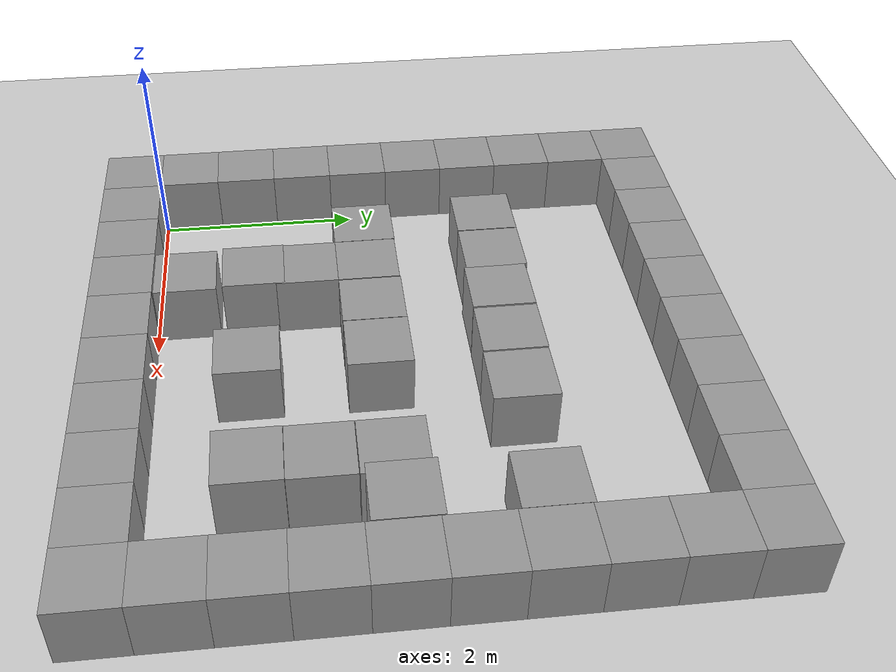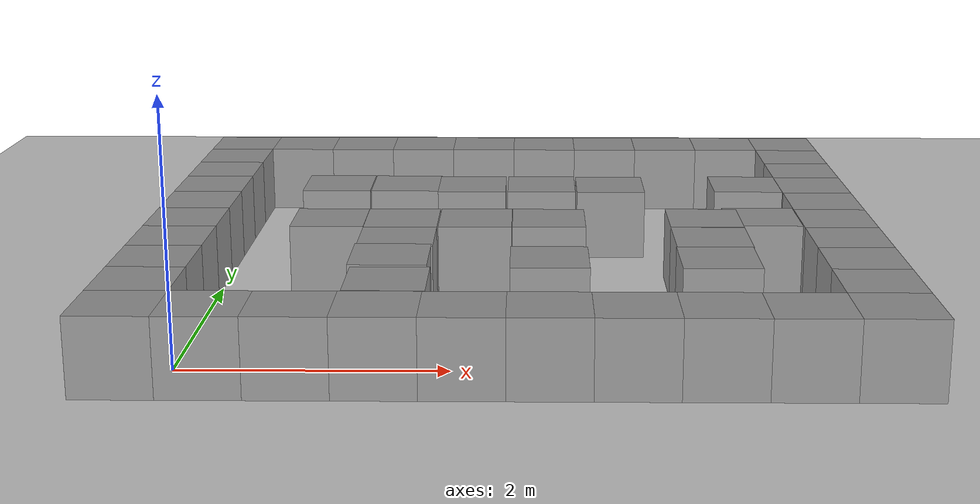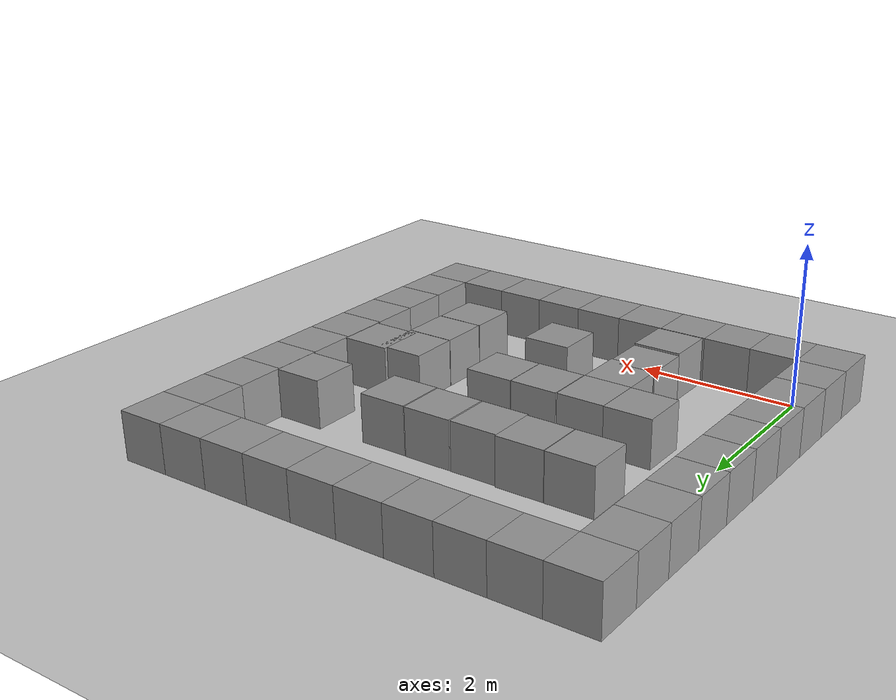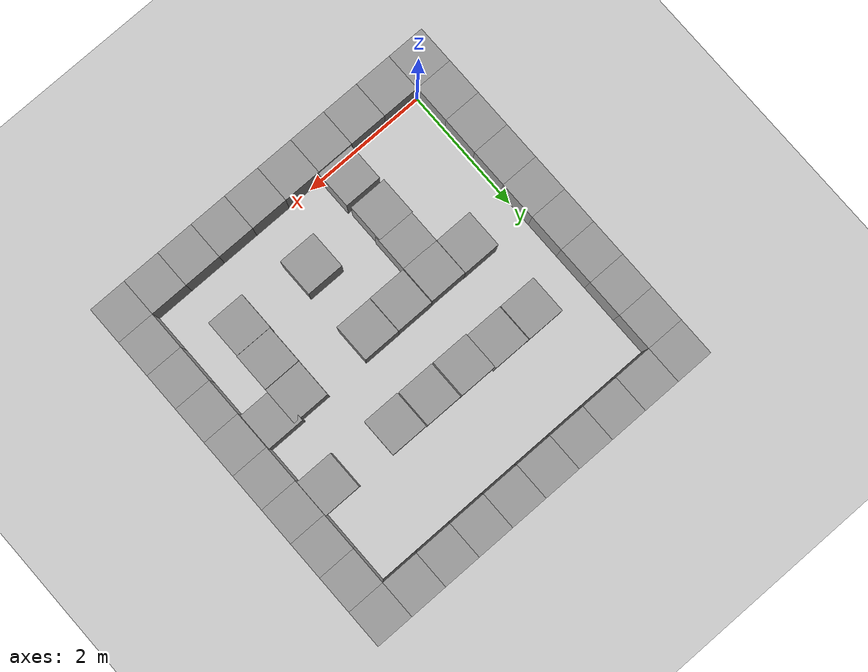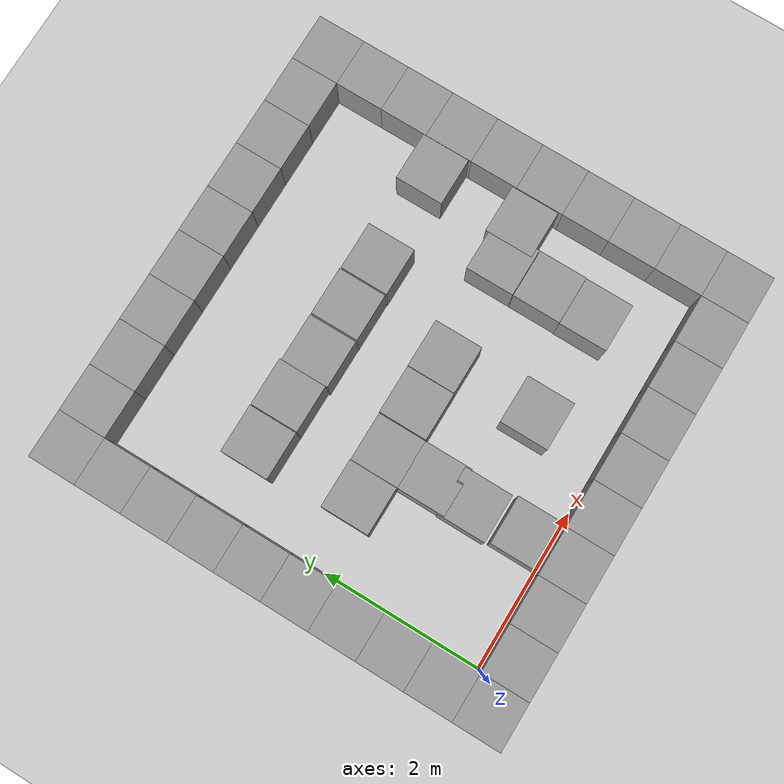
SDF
<sdf version="1.7">
 <world name="default">
  <scene><ambient>0.4 0.4 0.4 1</ambient><shadows>0</shadows><background>0.7 0.7 0.7 1</background></scene>
  <model name="ground_plane">
   <static>1</static>
   <link name="link">
    <collision name="collision">
     <geometry><plane><normal>0 0 1</normal><size>100 100</size></plane></geometry>
     <surface><friction><ode><mu>100</mu><mu2>50</mu2></ode></friction></surface>
    </collision>
    <visual name="visual">
     <cast_shadows>0</cast_shadows>
     <geometry><plane><normal>0 0 1</normal><size>100 100</size></plane></geometry>
     <material>
      <script><uri>file://media/materials/scripts/gazebo.material</uri><name>Gazebo/Grey</name></script>
     </material>
    </visual>
   </link>
  </model>
  <light name="sun" type="directional">
   <pose>0 0 10 0 -0 0</pose>
   <diffuse>0.8 0.8 0.8 1</diffuse>
   <specular>0.2 0.2 0.2 1</specular>
   <attenuation>
    <range>1000</range>
    <constant>0.9</constant>
    <linear>0.01</linear>
    <quadratic>0.001</quadratic>
   </attenuation>
   <direction>-0.5 0.1 -0.9</direction>
   <spot><inner_angle>0</inner_angle><outer_angle>0</outer_angle><falloff>0</falloff></spot>
  </light>
  <model name="unit_box_id_-0.6_-0.6">
   <static>1</static>
   <pose>-0.3 -0.3 0.3 0 -0 0</pose>
   <link name="link">
    <inertial>
     <mass>1</mass>
     <inertia>
      <ixx>0.166667</ixx>
      <ixy>0</ixy>
      <ixz>0</ixz>
      <iyy>0.166667</iyy>
      <iyz>0</iyz>
      <izz>0.166667</izz>
     </inertia>
     <pose>-0.3 -0.3 0.3 0 -0 0</pose>
    </inertial>
    <collision name="collision"><geometry><box><size>0.6 0.6 0.6</size></box></geometry></collision>
    <visual name="visual">
     <geometry><box><size>0.6 0.6 0.6</size></box></geometry>
     <material>
      <script><name>Gazebo/Grey</name><uri>file://media/materials/scripts/gazebo.material</uri></script>
     </material>
    </visual>
   </link>
  </model>
  <model name="unit_box_id_4.8_-0.6">
   <static>1</static>
   <pose>5.1 -0.3 0.3 0 -0 0</pose>
   <link name="link">
    <inertial>
     <mass>1</mass>
     <inertia>
      <ixx>0.166667</ixx>
      <ixy>0</ixy>
      <ixz>0</ixz>
      <iyy>0.166667</iyy>
      <iyz>0</iyz>
      <izz>0.166667</izz>
     </inertia>
     <pose>5.1 -0.3 0.3 0 -0 0</pose>
    </inertial>
    <collision name="collision"><geometry><box><size>0.6 0.6 0.6</size></box></geometry></collision>
    <visual name="visual">
     <geometry><box><size>0.6 0.6 0.6</size></box></geometry>
     <material>
      <script><name>Gazebo/Grey</name><uri>file://media/materials/scripts/gazebo.material</uri></script>
     </material>
    </visual>
   </link>
  </model>
  <model name="unit_box_id_-0.6_0.0">
   <static>1</static>
   <pose>-0.3 0.3 0.3 0 -0 0</pose>
   <link name="link">
    <inertial>
     <mass>1</mass>
     <inertia>
      <ixx>0.166667</ixx>
      <ixy>0</ixy>
      <ixz>0</ixz>
      <iyy>0.166667</iyy>
      <iyz>0</iyz>
      <izz>0.166667</izz>
     </inertia>
     <pose>-0.3 0.3 0.3 0 -0 0</pose>
    </inertial>
    <collision name="collision"><geometry><box><size>0.6 0.6 0.6</size></box></geometry></collision>
    <visual name="visual">
     <geometry><box><size>0.6 0.6 0.6</size></box></geometry>
     <material>
      <script><name>Gazebo/Grey</name><uri>file://media/materials/scripts/gazebo.material</uri></script>
     </material>
    </visual>
   </link>
  </model>
  <model name="unit_box_id_4.8_0.0">
   <static>1</static>
   <pose>5.1 0.3 0.3 0 -0 0</pose>
   <link name="link">
    <inertial>
     <mass>1</mass>
     <inertia>
      <ixx>0.166667</ixx>
      <ixy>0</ixy>
      <ixz>0</ixz>
      <iyy>0.166667</iyy>
      <iyz>0</iyz>
      <izz>0.166667</izz>
     </inertia>
     <pose>5.1 0.3 0.3 0 -0 0</pose>
    </inertial>
    <collision name="collision"><geometry><box><size>0.6 0.6 0.6</size></box></geometry></collision>
    <visual name="visual">
     <geometry><box><size>0.6 0.6 0.6</size></box></geometry>
     <material>
      <script><name>Gazebo/Grey</name><uri>file://media/materials/scripts/gazebo.material</uri></script>
     </material>
    </visual>
   </link>
  </model>
  <model name="unit_box_id_-0.6_0.6">
   <static>1</static>
   <pose>-0.3 0.9 0.3 0 -0 0</pose>
   <link name="link">
    <inertial>
     <mass>1</mass>
     <inertia>
      <ixx>0.166667</ixx>
      <ixy>0</ixy>
      <ixz>0</ixz>
      <iyy>0.166667</iyy>
      <iyz>0</iyz>
      <izz>0.166667</izz>
     </inertia>
     <pose>-0.3 0.9 0.3 0 -0 0</pose>
    </inertial>
    <collision name="collision"><geometry><box><size>0.6 0.6 0.6</size></box></geometry></collision>
    <visual name="visual">
     <geometry><box><size>0.6 0.6 0.6</size></box></geometry>
     <material>
      <script><name>Gazebo/Grey</name><uri>file://media/materials/scripts/gazebo.material</uri></script>
     </material>
    </visual>
   </link>
  </model>
  <model name="unit_box_id_4.8_0.6">
   <static>1</static>
   <pose>5.1 0.9 0.3 0 -0 0</pose>
   <link name="link">
    <inertial>
     <mass>1</mass>
     <inertia>
      <ixx>0.166667</ixx>
      <ixy>0</ixy>
      <ixz>0</ixz>
      <iyy>0.166667</iyy>
      <iyz>0</iyz>
      <izz>0.166667</izz>
     </inertia>
     <pose>5.1 0.9 0.3 0 -0 0</pose>
    </inertial>
    <collision name="collision"><geometry><box><size>0.6 0.6 0.6</size></box></geometry></collision>
    <visual name="visual">
     <geometry><box><size>0.6 0.6 0.6</size></box></geometry>
     <material>
      <script><name>Gazebo/Grey</name><uri>file://media/materials/scripts/gazebo.material</uri></script>
     </material>
    </visual>
   </link>
  </model>
  <model name="unit_box_id_-0.6_1.2">
   <static>1</static>
   <pose>-0.3 1.5 0.3 0 -0 0</pose>
   <link name="link">
    <inertial>
     <mass>1</mass>
     <inertia>
      <ixx>0.166667</ixx>
      <ixy>0</ixy>
      <ixz>0</ixz>
      <iyy>0.166667</iyy>
      <iyz>0</iyz>
      <izz>0.166667</izz>
     </inertia>
     <pose>-0.3 1.5 0.3 0 -0 0</pose>
    </inertial>
    <collision name="collision"><geometry><box><size>0.6 0.6 0.6</size></box></geometry></collision>
    <visual name="visual">
     <geometry><box><size>0.6 0.6 0.6</size></box></geometry>
     <material>
      <script><name>Gazebo/Grey</name><uri>file://media/materials/scripts/gazebo.material</uri></script>
     </material>
    </visual>
   </link>
  </model>
  <model name="unit_box_id_4.8_1.2">
   <static>1</static>
   <pose>5.1 1.5 0.3 0 -0 0</pose>
   <link name="link">
    <inertial>
     <mass>1</mass>
     <inertia>
      <ixx>0.166667</ixx>
      <ixy>0</ixy>
      <ixz>0</ixz>
      <iyy>0.166667</iyy>
      <iyz>0</iyz>
      <izz>0.166667</izz>
     </inertia>
     <pose>5.1 1.5 0.3 0 -0 0</pose>
    </inertial>
    <collision name="collision"><geometry><box><size>0.6 0.6 0.6</size></box></geometry></collision>
    <visual name="visual">
     <geometry><box><size>0.6 0.6 0.6</size></box></geometry>
     <material>
      <script><name>Gazebo/Grey</name><uri>file://media/materials/scripts/gazebo.material</uri></script>
     </material>
    </visual>
   </link>
  </model>
  <model name="unit_box_id_-0.6_1.7999999999999998">
   <static>1</static>
   <pose>-0.3 2.1 0.3 0 -0 0</pose>
   <link name="link">
    <inertial>
     <mass>1</mass>
     <inertia>
      <ixx>0.166667</ixx>
      <ixy>0</ixy>
      <ixz>0</ixz>
      <iyy>0.166667</iyy>
      <iyz>0</iyz>
      <izz>0.166667</izz>
     </inertia>
     <pose>-0.3 2.1 0.3 0 -0 0</pose>
    </inertial>
    <collision name="collision"><geometry><box><size>0.6 0.6 0.6</size></box></geometry></collision>
    <visual name="visual">
     <geometry><box><size>0.6 0.6 0.6</size></box></geometry>
     <material>
      <script><name>Gazebo/Grey</name><uri>file://media/materials/scripts/gazebo.material</uri></script>
     </material>
    </visual>
   </link>
  </model>
  <model name="unit_box_id_4.8_1.7999999999999998">
   <static>1</static>
   <pose>5.1 2.1 0.3 0 -0 0</pose>
   <link name="link">
    <inertial>
     <mass>1</mass>
     <inertia>
      <ixx>0.166667</ixx>
      <ixy>0</ixy>
      <ixz>0</ixz>
      <iyy>0.166667</iyy>
      <iyz>0</iyz>
      <izz>0.166667</izz>
     </inertia>
     <pose>5.1 2.1 0.3 0 -0 0</pose>
    </inertial>
    <collision name="collision"><geometry><box><size>0.6 0.6 0.6</size></box></geometry></collision>
    <visual name="visual">
     <geometry><box><size>0.6 0.6 0.6</size></box></geometry>
     <material>
      <script><name>Gazebo/Grey</name><uri>file://media/materials/scripts/gazebo.material</uri></script>
     </material>
    </visual>
   </link>
  </model>
  <model name="unit_box_id_-0.6_2.4">
   <static>1</static>
   <pose>-0.3 2.7 0.3 0 -0 0</pose>
   <link name="link">
    <inertial>
     <mass>1</mass>
     <inertia>
      <ixx>0.166667</ixx>
      <ixy>0</ixy>
      <ixz>0</ixz>
      <iyy>0.166667</iyy>
      <iyz>0</iyz>
      <izz>0.166667</izz>
     </inertia>
     <pose>-0.3 2.7 0.3 0 -0 0</pose>
    </inertial>
    <collision name="collision"><geometry><box><size>0.6 0.6 0.6</size></box></geometry></collision>
    <visual name="visual">
     <geometry><box><size>0.6 0.6 0.6</size></box></geometry>
     <material>
      <script><name>Gazebo/Grey</name><uri>file://media/materials/scripts/gazebo.material</uri></script>
     </material>
    </visual>
   </link>
  </model>
  <model name="unit_box_id_4.8_2.4">
   <static>1</static>
   <pose>5.1 2.7 0.3 0 -0 0</pose>
   <link name="link">
    <inertial>
     <mass>1</mass>
     <inertia>
      <ixx>0.166667</ixx>
      <ixy>0</ixy>
      <ixz>0</ixz>
      <iyy>0.166667</iyy>
      <iyz>0</iyz>
      <izz>0.166667</izz>
     </inertia>
     <pose>5.1 2.7 0.3 0 -0 0</pose>
    </inertial>
    <collision name="collision"><geometry><box><size>0.6 0.6 0.6</size></box></geometry></collision>
    <visual name="visual">
     <geometry><box><size>0.6 0.6 0.6</size></box></geometry>
     <material>
      <script><name>Gazebo/Grey</name><uri>file://media/materials/scripts/gazebo.material</uri></script>
     </material>
    </visual>
   </link>
  </model>
  <model name="unit_box_id_-0.6_3.0">
   <static>1</static>
   <pose>-0.3 3.3 0.3 0 -0 0</pose>
   <link name="link">
    <inertial>
     <mass>1</mass>
     <inertia>
      <ixx>0.166667</ixx>
      <ixy>0</ixy>
      <ixz>0</ixz>
      <iyy>0.166667</iyy>
      <iyz>0</iyz>
      <izz>0.166667</izz>
     </inertia>
     <pose>-0.3 3.3 0.3 0 -0 0</pose>
    </inertial>
    <collision name="collision"><geometry><box><size>0.6 0.6 0.6</size></box></geometry></collision>
    <visual name="visual">
     <geometry><box><size>0.6 0.6 0.6</size></box></geometry>
     <material>
      <script><name>Gazebo/Grey</name><uri>file://media/materials/scripts/gazebo.material</uri></script>
     </material>
    </visual>
   </link>
  </model>
  <model name="unit_box_id_4.8_3.0">
   <static>1</static>
   <pose>5.1 3.3 0.3 0 -0 0</pose>
   <link name="link">
    <inertial>
     <mass>1</mass>
     <inertia>
      <ixx>0.166667</ixx>
      <ixy>0</ixy>
      <ixz>0</ixz>
      <iyy>0.166667</iyy>
      <iyz>0</iyz>
      <izz>0.166667</izz>
     </inertia>
     <pose>5.1 3.3 0.3 0 -0 0</pose>
    </inertial>
    <collision name="collision"><geometry><box><size>0.6 0.6 0.6</size></box></geometry></collision>
    <visual name="visual">
     <geometry><box><size>0.6 0.6 0.6</size></box></geometry>
     <material>
      <script><name>Gazebo/Grey</name><uri>file://media/materials/scripts/gazebo.material</uri></script>
     </material>
    </visual>
   </link>
  </model>
  <model name="unit_box_id_-0.6_3.5999999999999996">
   <static>1</static>
   <pose>-0.3 3.9 0.3 0 -0 0</pose>
   <link name="link">
    <inertial>
     <mass>1</mass>
     <inertia>
      <ixx>0.166667</ixx>
      <ixy>0</ixy>
      <ixz>0</ixz>
      <iyy>0.166667</iyy>
      <iyz>0</iyz>
      <izz>0.166667</izz>
     </inertia>
     <pose>-0.3 3.9 0.3 0 -0 0</pose>
    </inertial>
    <collision name="collision"><geometry><box><size>0.6 0.6 0.6</size></box></geometry></collision>
    <visual name="visual">
     <geometry><box><size>0.6 0.6 0.6</size></box></geometry>
     <material>
      <script><name>Gazebo/Grey</name><uri>file://media/materials/scripts/gazebo.material</uri></script>
     </material>
    </visual>
   </link>
  </model>
  <model name="unit_box_id_4.8_3.5999999999999996">
   <static>1</static>
   <pose>5.1 3.9 0.3 0 -0 0</pose>
   <link name="link">
    <inertial>
     <mass>1</mass>
     <inertia>
      <ixx>0.166667</ixx>
      <ixy>0</ixy>
      <ixz>0</ixz>
      <iyy>0.166667</iyy>
      <iyz>0</iyz>
      <izz>0.166667</izz>
     </inertia>
     <pose>5.1 3.9 0.3 0 -0 0</pose>
    </inertial>
    <collision name="collision"><geometry><box><size>0.6 0.6 0.6</size></box></geometry></collision>
    <visual name="visual">
     <geometry><box><size>0.6 0.6 0.6</size></box></geometry>
     <material>
      <script><name>Gazebo/Grey</name><uri>file://media/materials/scripts/gazebo.material</uri></script>
     </material>
    </visual>
   </link>
  </model>
  <model name="unit_box_id_-0.6_4.2">
   <static>1</static>
   <pose>-0.3 4.5 0.3 0 -0 0</pose>
   <link name="link">
    <inertial>
     <mass>1</mass>
     <inertia>
      <ixx>0.166667</ixx>
      <ixy>0</ixy>
      <ixz>0</ixz>
      <iyy>0.166667</iyy>
      <iyz>0</iyz>
      <izz>0.166667</izz>
     </inertia>
     <pose>-0.3 4.5 0.3 0 -0 0</pose>
    </inertial>
    <collision name="collision"><geometry><box><size>0.6 0.6 0.6</size></box></geometry></collision>
    <visual name="visual">
     <geometry><box><size>0.6 0.6 0.6</size></box></geometry>
     <material>
      <script><name>Gazebo/Grey</name><uri>file://media/materials/scripts/gazebo.material</uri></script>
     </material>
    </visual>
   </link>
  </model>
  <model name="unit_box_id_4.8_4.2">
   <static>1</static>
   <pose>5.1 4.5 0.3 0 -0 0</pose>
   <link name="link">
    <inertial>
     <mass>1</mass>
     <inertia>
      <ixx>0.166667</ixx>
      <ixy>0</ixy>
      <ixz>0</ixz>
      <iyy>0.166667</iyy>
      <iyz>0</iyz>
      <izz>0.166667</izz>
     </inertia>
     <pose>5.1 4.5 0.3 0 -0 0</pose>
    </inertial>
    <collision name="collision"><geometry><box><size>0.6 0.6 0.6</size></box></geometry></collision>
    <visual name="visual">
     <geometry><box><size>0.6 0.6 0.6</size></box></geometry>
     <material>
      <script><name>Gazebo/Grey</name><uri>file://media/materials/scripts/gazebo.material</uri></script>
     </material>
    </visual>
   </link>
  </model>
  <model name="unit_box_id_-0.6_4.8">
   <static>1</static>
   <pose>-0.3 5.1 0.3 0 -0 0</pose>
   <link name="link">
    <inertial>
     <mass>1</mass>
     <inertia>
      <ixx>0.166667</ixx>
      <ixy>0</ixy>
      <ixz>0</ixz>
      <iyy>0.166667</iyy>
      <iyz>0</iyz>
      <izz>0.166667</izz>
     </inertia>
     <pose>-0.3 5.1 0.3 0 -0 0</pose>
    </inertial>
    <collision name="collision"><geometry><box><size>0.6 0.6 0.6</size></box></geometry></collision>
    <visual name="visual">
     <geometry><box><size>0.6 0.6 0.6</size></box></geometry>
     <material>
      <script><name>Gazebo/Grey</name><uri>file://media/materials/scripts/gazebo.material</uri></script>
     </material>
    </visual>
   </link>
  </model>
  <model name="unit_box_id_4.8_4.8">
   <static>1</static>
   <pose>5.1 5.1 0.3 0 -0 0</pose>
   <link name="link">
    <inertial>
     <mass>1</mass>
     <inertia>
      <ixx>0.166667</ixx>
      <ixy>0</ixy>
      <ixz>0</ixz>
      <iyy>0.166667</iyy>
      <iyz>0</iyz>
      <izz>0.166667</izz>
     </inertia>
     <pose>5.1 5.1 0.3 0 -0 0</pose>
    </inertial>
    <collision name="collision"><geometry><box><size>0.6 0.6 0.6</size></box></geometry></collision>
    <visual name="visual">
     <geometry><box><size>0.6 0.6 0.6</size></box></geometry>
     <material>
      <script><name>Gazebo/Grey</name><uri>file://media/materials/scripts/gazebo.material</uri></script>
     </material>
    </visual>
   </link>
  </model>
  <model name="unit_box_id_-0.6_-0.6">
   <static>1</static>
   <pose>-0.3 -0.3 0.3 0 -0 0</pose>
   <link name="link">
    <inertial>
     <mass>1</mass>
     <inertia>
      <ixx>0.166667</ixx>
      <ixy>0</ixy>
      <ixz>0</ixz>
      <iyy>0.166667</iyy>
      <iyz>0</iyz>
      <izz>0.166667</izz>
     </inertia>
     <pose>-0.3 -0.3 0.3 0 -0 0</pose>
    </inertial>
    <collision name="collision"><geometry><box><size>0.6 0.6 0.6</size></box></geometry></collision>
    <visual name="visual">
     <geometry><box><size>0.6 0.6 0.6</size></box></geometry>
     <material>
      <script><name>Gazebo/Grey</name><uri>file://media/materials/scripts/gazebo.material</uri></script>
     </material>
    </visual>
   </link>
  </model>
  <model name="unit_box_id_-0.6_4.8">
   <static>1</static>
   <pose>-0.3 5.1 0.3 0 -0 0</pose>
   <link name="link">
    <inertial>
     <mass>1</mass>
     <inertia>
      <ixx>0.166667</ixx>
      <ixy>0</ixy>
      <ixz>0</ixz>
      <iyy>0.166667</iyy>
      <iyz>0</iyz>
      <izz>0.166667</izz>
     </inertia>
     <pose>-0.3 5.1 0.3 0 -0 0</pose>
    </inertial>
    <collision name="collision"><geometry><box><size>0.6 0.6 0.6</size></box></geometry></collision>
    <visual name="visual">
     <geometry><box><size>0.6 0.6 0.6</size></box></geometry>
     <material>
      <script><name>Gazebo/Grey</name><uri>file://media/materials/scripts/gazebo.material</uri></script>
     </material>
    </visual>
   </link>
  </model>
  <model name="unit_box_id_0.0_-0.6">
   <static>1</static>
   <pose>0.3 -0.3 0.3 0 -0 0</pose>
   <link name="link">
    <inertial>
     <mass>1</mass>
     <inertia>
      <ixx>0.166667</ixx>
      <ixy>0</ixy>
      <ixz>0</ixz>
      <iyy>0.166667</iyy>
      <iyz>0</iyz>
      <izz>0.166667</izz>
     </inertia>
     <pose>0.3 -0.3 0.3 0 -0 0</pose>
    </inertial>
    <collision name="collision"><geometry><box><size>0.6 0.6 0.6</size></box></geometry></collision>
    <visual name="visual">
     <geometry><box><size>0.6 0.6 0.6</size></box></geometry>
     <material>
      <script><name>Gazebo/Grey</name><uri>file://media/materials/scripts/gazebo.material</uri></script>
     </material>
    </visual>
   </link>
  </model>
  <model name="unit_box_id_0.0_4.8">
   <static>1</static>
   <pose>0.3 5.1 0.3 0 -0 0</pose>
   <link name="link">
    <inertial>
     <mass>1</mass>
     <inertia>
      <ixx>0.166667</ixx>
      <ixy>0</ixy>
      <ixz>0</ixz>
      <iyy>0.166667</iyy>
      <iyz>0</iyz>
      <izz>0.166667</izz>
     </inertia>
     <pose>0.3 5.1 0.3 0 -0 0</pose>
    </inertial>
    <collision name="collision"><geometry><box><size>0.6 0.6 0.6</size></box></geometry></collision>
    <visual name="visual">
     <geometry><box><size>0.6 0.6 0.6</size></box></geometry>
     <material>
      <script><name>Gazebo/Grey</name><uri>file://media/materials/scripts/gazebo.material</uri></script>
     </material>
    </visual>
   </link>
  </model>
  <model name="unit_box_id_0.6_-0.6">
   <static>1</static>
   <pose>0.9 -0.3 0.3 0 -0 0</pose>
   <link name="link">
    <inertial>
     <mass>1</mass>
     <inertia>
      <ixx>0.166667</ixx>
      <ixy>0</ixy>
      <ixz>0</ixz>
      <iyy>0.166667</iyy>
      <iyz>0</iyz>
      <izz>0.166667</izz>
     </inertia>
     <pose>0.9 -0.3 0.3 0 -0 0</pose>
    </inertial>
    <collision name="collision"><geometry><box><size>0.6 0.6 0.6</size></box></geometry></collision>
    <visual name="visual">
     <geometry><box><size>0.6 0.6 0.6</size></box></geometry>
     <material>
      <script><name>Gazebo/Grey</name><uri>file://media/materials/scripts/gazebo.material</uri></script>
     </material>
    </visual>
   </link>
  </model>
  <model name="unit_box_id_0.6_4.8">
   <static>1</static>
   <pose>0.9 5.1 0.3 0 -0 0</pose>
   <link name="link">
    <inertial>
     <mass>1</mass>
     <inertia>
      <ixx>0.166667</ixx>
      <ixy>0</ixy>
      <ixz>0</ixz>
      <iyy>0.166667</iyy>
      <iyz>0</iyz>
      <izz>0.166667</izz>
     </inertia>
     <pose>0.9 5.1 0.3 0 -0 0</pose>
    </inertial>
    <collision name="collision"><geometry><box><size>0.6 0.6 0.6</size></box></geometry></collision>
    <visual name="visual">
     <geometry><box><size>0.6 0.6 0.6</size></box></geometry>
     <material>
      <script><name>Gazebo/Grey</name><uri>file://media/materials/scripts/gazebo.material</uri></script>
     </material>
    </visual>
   </link>
  </model>
  <model name="unit_box_id_1.2_-0.6">
   <static>1</static>
   <pose>1.5 -0.3 0.3 0 -0 0</pose>
   <link name="link">
    <inertial>
     <mass>1</mass>
     <inertia>
      <ixx>0.166667</ixx>
      <ixy>0</ixy>
      <ixz>0</ixz>
      <iyy>0.166667</iyy>
      <iyz>0</iyz>
      <izz>0.166667</izz>
     </inertia>
     <pose>1.5 -0.3 0.3 0 -0 0</pose>
    </inertial>
    <collision name="collision"><geometry><box><size>0.6 0.6 0.6</size></box></geometry></collision>
    <visual name="visual">
     <geometry><box><size>0.6 0.6 0.6</size></box></geometry>
     <material>
      <script><name>Gazebo/Grey</name><uri>file://media/materials/scripts/gazebo.material</uri></script>
     </material>
    </visual>
   </link>
  </model>
  <model name="unit_box_id_1.2_4.8">
   <static>1</static>
   <pose>1.5 5.1 0.3 0 -0 0</pose>
   <link name="link">
    <inertial>
     <mass>1</mass>
     <inertia>
      <ixx>0.166667</ixx>
      <ixy>0</ixy>
      <ixz>0</ixz>
      <iyy>0.166667</iyy>
      <iyz>0</iyz>
      <izz>0.166667</izz>
     </inertia>
     <pose>1.5 5.1 0.3 0 -0 0</pose>
    </inertial>
    <collision name="collision"><geometry><box><size>0.6 0.6 0.6</size></box></geometry></collision>
    <visual name="visual">
     <geometry><box><size>0.6 0.6 0.6</size></box></geometry>
     <material>
      <script><name>Gazebo/Grey</name><uri>file://media/materials/scripts/gazebo.material</uri></script>
     </material>
    </visual>
   </link>
  </model>
  <model name="unit_box_id_1.7999999999999998_-0.6">
   <static>1</static>
   <pose>2.1 -0.3 0.3 0 -0 0</pose>
   <link name="link">
    <inertial>
     <mass>1</mass>
     <inertia>
      <ixx>0.166667</ixx>
      <ixy>0</ixy>
      <ixz>0</ixz>
      <iyy>0.166667</iyy>
      <iyz>0</iyz>
      <izz>0.166667</izz>
     </inertia>
     <pose>2.1 -0.3 0.3 0 -0 0</pose>
    </inertial>
    <collision name="collision"><geometry><box><size>0.6 0.6 0.6</size></box></geometry></collision>
    <visual name="visual">
     <geometry><box><size>0.6 0.6 0.6</size></box></geometry>
     <material>
      <script><name>Gazebo/Grey</name><uri>file://media/materials/scripts/gazebo.material</uri></script>
     </material>
    </visual>
   </link>
  </model>
  <model name="unit_box_id_1.7999999999999998_4.8">
   <static>1</static>
   <pose>2.1 5.1 0.3 0 -0 0</pose>
   <link name="link">
    <inertial>
     <mass>1</mass>
     <inertia>
      <ixx>0.166667</ixx>
      <ixy>0</ixy>
      <ixz>0</ixz>
      <iyy>0.166667</iyy>
      <iyz>0</iyz>
      <izz>0.166667</izz>
     </inertia>
     <pose>2.1 5.1 0.3 0 -0 0</pose>
    </inertial>
    <collision name="collision"><geometry><box><size>0.6 0.6 0.6</size></box></geometry></collision>
    <visual name="visual">
     <geometry><box><size>0.6 0.6 0.6</size></box></geometry>
     <material>
      <script><name>Gazebo/Grey</name><uri>file://media/materials/scripts/gazebo.material</uri></script>
     </material>
    </visual>
   </link>
  </model>
  <model name="unit_box_id_2.4_-0.6">
   <static>1</static>
   <pose>2.7 -0.3 0.3 0 -0 0</pose>
   <link name="link">
    <inertial>
     <mass>1</mass>
     <inertia>
      <ixx>0.166667</ixx>
      <ixy>0</ixy>
      <ixz>0</ixz>
      <iyy>0.166667</iyy>
      <iyz>0</iyz>
      <izz>0.166667</izz>
     </inertia>
     <pose>2.7 -0.3 0.3 0 -0 0</pose>
    </inertial>
    <collision name="collision"><geometry><box><size>0.6 0.6 0.6</size></box></geometry></collision>
    <visual name="visual">
     <geometry><box><size>0.6 0.6 0.6</size></box></geometry>
     <material>
      <script><name>Gazebo/Grey</name><uri>file://media/materials/scripts/gazebo.material</uri></script>
     </material>
    </visual>
   </link>
  </model>
  <model name="unit_box_id_2.4_4.8">
   <static>1</static>
   <pose>2.7 5.1 0.3 0 -0 0</pose>
   <link name="link">
    <inertial>
     <mass>1</mass>
     <inertia>
      <ixx>0.166667</ixx>
      <ixy>0</ixy>
      <ixz>0</ixz>
      <iyy>0.166667</iyy>
      <iyz>0</iyz>
      <izz>0.166667</izz>
     </inertia>
     <pose>2.7 5.1 0.3 0 -0 0</pose>
    </inertial>
    <collision name="collision"><geometry><box><size>0.6 0.6 0.6</size></box></geometry></collision>
    <visual name="visual">
     <geometry><box><size>0.6 0.6 0.6</size></box></geometry>
     <material>
      <script><name>Gazebo/Grey</name><uri>file://media/materials/scripts/gazebo.material</uri></script>
     </material>
    </visual>
   </link>
  </model>
  <model name="unit_box_id_3.0_-0.6">
   <static>1</static>
   <pose>3.3 -0.3 0.3 0 -0 0</pose>
   <link name="link">
    <inertial>
     <mass>1</mass>
     <inertia>
      <ixx>0.166667</ixx>
      <ixy>0</ixy>
      <ixz>0</ixz>
      <iyy>0.166667</iyy>
      <iyz>0</iyz>
      <izz>0.166667</izz>
     </inertia>
     <pose>3.3 -0.3 0.3 0 -0 0</pose>
    </inertial>
    <collision name="collision"><geometry><box><size>0.6 0.6 0.6</size></box></geometry></collision>
    <visual name="visual">
     <geometry><box><size>0.6 0.6 0.6</size></box></geometry>
     <material>
      <script><name>Gazebo/Grey</name><uri>file://media/materials/scripts/gazebo.material</uri></script>
     </material>
    </visual>
   </link>
  </model>
  <model name="unit_box_id_3.0_4.8">
   <static>1</static>
   <pose>3.3 5.1 0.3 0 -0 0</pose>
   <link name="link">
    <inertial>
     <mass>1</mass>
     <inertia>
      <ixx>0.166667</ixx>
      <ixy>0</ixy>
      <ixz>0</ixz>
      <iyy>0.166667</iyy>
      <iyz>0</iyz>
      <izz>0.166667</izz>
     </inertia>
     <pose>3.3 5.1 0.3 0 -0 0</pose>
    </inertial>
    <collision name="collision"><geometry><box><size>0.6 0.6 0.6</size></box></geometry></collision>
    <visual name="visual">
     <geometry><box><size>0.6 0.6 0.6</size></box></geometry>
     <material>
      <script><name>Gazebo/Grey</name><uri>file://media/materials/scripts/gazebo.material</uri></script>
     </material>
    </visual>
   </link>
  </model>
  <model name="unit_box_id_3.5999999999999996_-0.6">
   <static>1</static>
   <pose>3.9 -0.3 0.3 0 -0 0</pose>
   <link name="link">
    <inertial>
     <mass>1</mass>
     <inertia>
      <ixx>0.166667</ixx>
      <ixy>0</ixy>
      <ixz>0</ixz>
      <iyy>0.166667</iyy>
      <iyz>0</iyz>
      <izz>0.166667</izz>
     </inertia>
     <pose>3.9 -0.3 0.3 0 -0 0</pose>
    </inertial>
    <collision name="collision"><geometry><box><size>0.6 0.6 0.6</size></box></geometry></collision>
    <visual name="visual">
     <geometry><box><size>0.6 0.6 0.6</size></box></geometry>
     <material>
      <script><name>Gazebo/Grey</name><uri>file://media/materials/scripts/gazebo.material</uri></script>
     </material>
    </visual>
   </link>
  </model>
  <model name="unit_box_id_3.5999999999999996_4.8">
   <static>1</static>
   <pose>3.9 5.1 0.3 0 -0 0</pose>
   <link name="link">
    <inertial>
     <mass>1</mass>
     <inertia>
      <ixx>0.166667</ixx>
      <ixy>0</ixy>
      <ixz>0</ixz>
      <iyy>0.166667</iyy>
      <iyz>0</iyz>
      <izz>0.166667</izz>
     </inertia>
     <pose>3.9 5.1 0.3 0 -0 0</pose>
    </inertial>
    <collision name="collision"><geometry><box><size>0.6 0.6 0.6</size></box></geometry></collision>
    <visual name="visual">
     <geometry><box><size>0.6 0.6 0.6</size></box></geometry>
     <material>
      <script><name>Gazebo/Grey</name><uri>file://media/materials/scripts/gazebo.material</uri></script>
     </material>
    </visual>
   </link>
  </model>
  <model name="unit_box_id_4.2_-0.6">
   <static>1</static>
   <pose>4.5 -0.3 0.3 0 -0 0</pose>
   <link name="link">
    <inertial>
     <mass>1</mass>
     <inertia>
      <ixx>0.166667</ixx>
      <ixy>0</ixy>
      <ixz>0</ixz>
      <iyy>0.166667</iyy>
      <iyz>0</iyz>
      <izz>0.166667</izz>
     </inertia>
     <pose>4.5 -0.3 0.3 0 -0 0</pose>
    </inertial>
    <collision name="collision"><geometry><box><size>0.6 0.6 0.6</size></box></geometry></collision>
    <visual name="visual">
     <geometry><box><size>0.6 0.6 0.6</size></box></geometry>
     <material>
      <script><name>Gazebo/Grey</name><uri>file://media/materials/scripts/gazebo.material</uri></script>
     </material>
    </visual>
   </link>
  </model>
  <model name="unit_box_id_4.2_4.8">
   <static>1</static>
   <pose>4.5 5.1 0.3 0 -0 0</pose>
   <link name="link">
    <inertial>
     <mass>1</mass>
     <inertia>
      <ixx>0.166667</ixx>
      <ixy>0</ixy>
      <ixz>0</ixz>
      <iyy>0.166667</iyy>
      <iyz>0</iyz>
      <izz>0.166667</izz>
     </inertia>
     <pose>4.5 5.1 0.3 0 -0 0</pose>
    </inertial>
    <collision name="collision"><geometry><box><size>0.6 0.6 0.6</size></box></geometry></collision>
    <visual name="visual">
     <geometry><box><size>0.6 0.6 0.6</size></box></geometry>
     <material>
      <script><name>Gazebo/Grey</name><uri>file://media/materials/scripts/gazebo.material</uri></script>
     </material>
    </visual>
   </link>
  </model>
  <model name="unit_box_id_4.8_-0.6">
   <static>1</static>
   <pose>5.1 -0.3 0.3 0 -0 0</pose>
   <link name="link">
    <inertial>
     <mass>1</mass>
     <inertia>
      <ixx>0.166667</ixx>
      <ixy>0</ixy>
      <ixz>0</ixz>
      <iyy>0.166667</iyy>
      <iyz>0</iyz>
      <izz>0.166667</izz>
     </inertia>
     <pose>5.1 -0.3 0.3 0 -0 0</pose>
    </inertial>
    <collision name="collision"><geometry><box><size>0.6 0.6 0.6</size></box></geometry></collision>
    <visual name="visual">
     <geometry><box><size>0.6 0.6 0.6</size></box></geometry>
     <material>
      <script><name>Gazebo/Grey</name><uri>file://media/materials/scripts/gazebo.material</uri></script>
     </material>
    </visual>
   </link>
  </model>
  <model name="unit_box_id_4.8_4.8">
   <static>1</static>
   <pose>5.1 5.1 0.3 0 -0 0</pose>
   <link name="link">
    <inertial>
     <mass>1</mass>
     <inertia>
      <ixx>0.166667</ixx>
      <ixy>0</ixy>
      <ixz>0</ixz>
      <iyy>0.166667</iyy>
      <iyz>0</iyz>
      <izz>0.166667</izz>
     </inertia>
     <pose>5.1 5.1 0.3 0 -0 0</pose>
    </inertial>
    <collision name="collision"><geometry><box><size>0.6 0.6 0.6</size></box></geometry></collision>
    <visual name="visual">
     <geometry><box><size>0.6 0.6 0.6</size></box></geometry>
     <material>
      <script><name>Gazebo/Grey</name><uri>file://media/materials/scripts/gazebo.material</uri></script>
     </material>
    </visual>
   </link>
  </model>
  <gravity>0 0 -9.8</gravity>
  <magnetic_field>6e-06 2.3e-05 -4.2e-05</magnetic_field>
  <atmosphere type="adiabatic"/>
  <physics type="ode">
   <max_step_size>0.001</max_step_size>
   <real_time_factor>1</real_time_factor>
   <real_time_update_rate>1000</real_time_update_rate>
  </physics>
  <spherical_coordinates>
   <surface_model>EARTH_WGS84</surface_model>
   <latitude_deg>0</latitude_deg>
   <longitude_deg>0</longitude_deg>
   <elevation>0</elevation>
   <heading_deg>0</heading_deg>
  </spherical_coordinates>
  <model name="unit_box_id_3_clone">
   <static>1</static>
   <pose>2.71209 0.896273 0.3 0 -0 0</pose>
   <link name="link">
    <inertial>
     <mass>1</mass>
     <inertia>
      <ixx>0.166667</ixx>
      <ixy>0</ixy>
      <ixz>0</ixz>
      <iyy>0.166667</iyy>
      <iyz>0</iyz>
      <izz>0.166667</izz>
     </inertia>
     <pose>3 3.3 0.3 0 -0 0</pose>
    </inertial>
    <collision name="collision"><geometry><box><size>0.6 0.6 0.6</size></box></geometry></collision>
    <visual name="visual">
     <geometry><box><size>0.6 0.6 0.6</size></box></geometry>
     <material>
      <script><name>Gazebo/Grey</name><uri>file://media/materials/scripts/gazebo.material</uri></script>
     </material>
    </visual>
   </link>
  </model>
  <model name="unit_box_id_3_clone_0">
   <static>1</static>
   <pose>4.00134 0.895798 0.3 0 -0 0</pose>
   <link name="link">
    <inertial>
     <mass>1</mass>
     <inertia>
      <ixx>0.166667</ixx>
      <ixy>0</ixy>
      <ixz>0</ixz>
      <iyy>0.166667</iyy>
      <iyz>0</iyz>
      <izz>0.166667</izz>
     </inertia>
     <pose>3 3.3 0.3 0 -0 0</pose>
    </inertial>
    <collision name="collision"><geometry><box><size>0.6 0.6 0.6</size></box></geometry></collision>
    <visual name="visual">
     <geometry><box><size>0.6 0.6 0.6</size></box></geometry>
     <material>
      <script><name>Gazebo/Grey</name><uri>file://media/materials/scripts/gazebo.material</uri></script>
     </material>
    </visual>
   </link>
  </model>
  <model name="unit_box_id_3_clone_0_clone">
   <static>1</static>
   <pose>1.50347 1.48445 0.3 0 -0 0</pose>
   <link name="link">
    <inertial>
     <mass>1</mass>
     <inertia>
      <ixx>0.166667</ixx>
      <ixy>0</ixy>
      <ixz>0</ixz>
      <iyy>0.166667</iyy>
      <iyz>0</iyz>
      <izz>0.166667</izz>
     </inertia>
     <pose>3 3.3 0.3 0 -0 0</pose>
    </inertial>
    <collision name="collision"><geometry><box><size>0.6 0.6 0.6</size></box></geometry></collision>
    <visual name="visual">
     <geometry><box><size>0.6 0.6 0.6</size></box></geometry>
     <material>
      <script><name>Gazebo/Grey</name><uri>file://media/materials/scripts/gazebo.material</uri></script>
     </material>
    </visual>
   </link>
  </model>
  <model name="unit_box_id_3_clone_0_clone_clone">
   <static>1</static>
   <pose>1.50345 2.07837 0.3 0 -0 0</pose>
   <link name="link">
    <inertial>
     <mass>1</mass>
     <inertia>
      <ixx>0.166667</ixx>
      <ixy>0</ixy>
      <ixz>0</ixz>
      <iyy>0.166667</iyy>
      <iyz>0</iyz>
      <izz>0.166667</izz>
     </inertia>
     <pose>3 3.3 0.3 0 -0 0</pose>
    </inertial>
    <collision name="collision"><geometry><box><size>0.6 0.6 0.6</size></box></geometry></collision>
    <visual name="visual">
     <geometry><box><size>0.6 0.6 0.6</size></box></geometry>
     <material>
      <script><name>Gazebo/Grey</name><uri>file://media/materials/scripts/gazebo.material</uri></script>
     </material>
    </visual>
   </link>
  </model>
  <model name="unit_box_id_3_clone_0_clone_clone_clone">
   <static>1</static>
   <pose>2.11332 2.08504 0.3 0 -0 0</pose>
   <link name="link">
    <inertial>
     <mass>1</mass>
     <inertia>
      <ixx>0.166667</ixx>
      <ixy>0</ixy>
      <ixz>0</ixz>
      <iyy>0.166667</iyy>
      <iyz>0</iyz>
      <izz>0.166667</izz>
     </inertia>
     <pose>3 3.3 0.3 0 -0 0</pose>
    </inertial>
    <collision name="collision"><geometry><box><size>0.6 0.6 0.6</size></box></geometry></collision>
    <visual name="visual">
     <geometry><box><size>0.6 0.6 0.6</size></box></geometry>
     <material>
      <script><name>Gazebo/Grey</name><uri>file://media/materials/scripts/gazebo.material</uri></script>
     </material>
    </visual>
   </link>
  </model>
  <model name="unit_box_id_3_clone_0_clone_clone_clone_clone">
   <static>1</static>
   <pose>2.71795 2.08803 0.3 0 -0 0</pose>
   <link name="link">
    <inertial>
     <mass>1</mass>
     <inertia>
      <ixx>0.166667</ixx>
      <ixy>0</ixy>
      <ixz>0</ixz>
      <iyy>0.166667</iyy>
      <iyz>0</iyz>
      <izz>0.166667</izz>
     </inertia>
     <pose>3 3.3 0.3 0 -0 0</pose>
    </inertial>
    <collision name="collision"><geometry><box><size>0.6 0.6 0.6</size></box></geometry></collision>
    <visual name="visual">
     <geometry><box><size>0.6 0.6 0.6</size></box></geometry>
     <material>
      <script><name>Gazebo/Grey</name><uri>file://media/materials/scripts/gazebo.material</uri></script>
     </material>
    </visual>
   </link>
  </model>
  <model name="unit_box_id_3_clone_1_clone">
   <static>1</static>
   <pose>4.00734 1.49815 0.3 0 -0 0</pose>
   <link name="link">
    <inertial>
     <mass>1</mass>
     <inertia>
      <ixx>0.166667</ixx>
      <ixy>0</ixy>
      <ixz>0</ixz>
      <iyy>0.166667</iyy>
      <iyz>0</iyz>
      <izz>0.166667</izz>
     </inertia>
     <pose>3 3.3 0.3 0 -0 0</pose>
    </inertial>
    <collision name="collision"><geometry><box><size>0.6 0.6 0.6</size></box></geometry></collision>
    <visual name="visual">
     <geometry><box><size>0.6 0.6 0.6</size></box></geometry>
     <material>
      <script><name>Gazebo/Grey</name><uri>file://media/materials/scripts/gazebo.material</uri></script>
     </material>
    </visual>
   </link>
  </model>
  <model name="unit_box_id_3_clone_1_clone_clone">
   <static>1</static>
   <pose>4.00864 2.10391 0.3 0 -0 0</pose>
   <link name="link">
    <inertial>
     <mass>1</mass>
     <inertia>
      <ixx>0.166667</ixx>
      <ixy>0</ixy>
      <ixz>0</ixz>
      <iyy>0.166667</iyy>
      <iyz>0</iyz>
      <izz>0.166667</izz>
     </inertia>
     <pose>3 3.3 0.3 0 -0 0</pose>
    </inertial>
    <collision name="collision"><geometry><box><size>0.6 0.6 0.6</size></box></geometry></collision>
    <visual name="visual">
     <geometry><box><size>0.6 0.6 0.6</size></box></geometry>
     <material>
      <script><name>Gazebo/Grey</name><uri>file://media/materials/scripts/gazebo.material</uri></script>
     </material>
    </visual>
   </link>
  </model>
  <model name="unit_box_id_3_clone_1_clone_clone_clone">
   <static>1</static>
   <pose>4.49286 2.14513 0.3 0 -0 0</pose>
   <link name="link">
    <inertial>
     <mass>1</mass>
     <inertia>
      <ixx>0.166667</ixx>
      <ixy>0</ixy>
      <ixz>0</ixz>
      <iyy>0.166667</iyy>
      <iyz>0</iyz>
      <izz>0.166667</izz>
     </inertia>
     <pose>3 3.3 0.3 0 -0 0</pose>
    </inertial>
    <collision name="collision"><geometry><box><size>0.6 0.6 0.6</size></box></geometry></collision>
    <visual name="visual">
     <geometry><box><size>0.6 0.6 0.6</size></box></geometry>
     <material>
      <script><name>Gazebo/Grey</name><uri>file://media/materials/scripts/gazebo.material</uri></script>
     </material>
    </visual>
   </link>
  </model>
  <model name="unit_box_id_3_clone_1_clone_clone_clone_1">
   <static>1</static>
   <pose>1.49034 0.966527 0.3 0 -0 0</pose>
   <link name="link">
    <inertial>
     <mass>1</mass>
     <inertia>
      <ixx>0.166667</ixx>
      <ixy>0</ixy>
      <ixz>0</ixz>
      <iyy>0.166667</iyy>
      <iyz>0</iyz>
      <izz>0.166667</izz>
     </inertia>
     <pose>3 3.3 0.3 0 -0 0</pose>
    </inertial>
    <collision name="collision"><geometry><box><size>0.6 0.6 0.6</size></box></geometry></collision>
    <visual name="visual">
     <geometry><box><size>0.6 0.6 0.6</size></box></geometry>
     <material>
      <script><name>Gazebo/Grey</name><uri>file://media/materials/scripts/gazebo.material</uri></script>
     </material>
    </visual>
   </link>
  </model>
  <model name="unit_box_id_3_clone_1_clone_clone_clone_1_clone">
   <static>1</static>
   <pose>1.51966 0.311239 0.3 0 -0 0</pose>
   <link name="link">
    <inertial>
     <mass>1</mass>
     <inertia>
      <ixx>0.166667</ixx>
      <ixy>0</ixy>
      <ixz>0</ixz>
      <iyy>0.166667</iyy>
      <iyz>0</iyz>
      <izz>0.166667</izz>
     </inertia>
     <pose>3 3.3 0.3 0 -0 0</pose>
    </inertial>
    <collision name="collision"><geometry><box><size>0.6 0.6 0.6</size></box></geometry></collision>
    <visual name="visual">
     <geometry><box><size>0.6 0.6 0.6</size></box></geometry>
     <material>
      <script><name>Gazebo/Grey</name><uri>file://media/materials/scripts/gazebo.material</uri></script>
     </material>
    </visual>
   </link>
  </model>
  <model name="unit_box_id_3_clone_1_clone_clone_clone_1_clone_0">
   <static>1</static>
   <pose>4.49836 3.3289 0.3 0 -0 0</pose>
   <link name="link">
    <inertial>
     <mass>1</mass>
     <inertia>
      <ixx>0.166667</ixx>
      <ixy>0</ixy>
      <ixz>0</ixz>
      <iyy>0.166667</iyy>
      <iyz>0</iyz>
      <izz>0.166667</izz>
     </inertia>
     <pose>3 3.3 0.3 0 -0 0</pose>
    </inertial>
    <collision name="collision"><geometry><box><size>0.6 0.6 0.6</size></box></geometry></collision>
    <visual name="visual">
     <geometry><box><size>0.6 0.6 0.6</size></box></geometry>
     <material>
      <script><name>Gazebo/Grey</name><uri>file://media/materials/scripts/gazebo.material</uri></script>
     </material>
    </visual>
   </link>
  </model>
  <model name="unit_box_id_3_clone_1_clone_clone_clone_1_clone_1">
   <static>1</static>
   <pose>3.27899 3.30806 0.3 0 -0 0</pose>
   <link name="link">
    <inertial>
     <mass>1</mass>
     <inertia>
      <ixx>0.166667</ixx>
      <ixy>0</ixy>
      <ixz>0</ixz>
      <iyy>0.166667</iyy>
      <iyz>0</iyz>
      <izz>0.166667</izz>
     </inertia>
     <pose>3 3.3 0.3 0 -0 0</pose>
    </inertial>
    <collision name="collision"><geometry><box><size>0.6 0.6 0.6</size></box></geometry></collision>
    <visual name="visual">
     <geometry><box><size>0.6 0.6 0.6</size></box></geometry>
     <material>
      <script><name>Gazebo/Grey</name><uri>file://media/materials/scripts/gazebo.material</uri></script>
     </material>
    </visual>
   </link>
  </model>
  <model name="unit_box_id_3_clone_1_clone_clone_clone_1_clone_2">
   <static>1</static>
   <pose>2.66405 3.31402 0.3 0 -0 0</pose>
   <link name="link">
    <inertial>
     <mass>1</mass>
     <inertia>
      <ixx>0.166667</ixx>
      <ixy>0</ixy>
      <ixz>0</ixz>
      <iyy>0.166667</iyy>
      <iyz>0</iyz>
      <izz>0.166667</izz>
     </inertia>
     <pose>3 3.3 0.3 0 -0 0</pose>
    </inertial>
    <collision name="collision"><geometry><box><size>0.6 0.6 0.6</size></box></geometry></collision>
    <visual name="visual">
     <geometry><box><size>0.6 0.6 0.6</size></box></geometry>
     <material>
      <script><name>Gazebo/Grey</name><uri>file://media/materials/scripts/gazebo.material</uri></script>
     </material>
    </visual>
   </link>
  </model>
  <model name="unit_box_id_3_clone_1_clone_clone_clone_1_clone_3">
   <static>1</static>
   <pose>2.04526 3.31617 0.3 0 -0 0</pose>
   <link name="link">
    <inertial>
     <mass>1</mass>
     <inertia>
      <ixx>0.166667</ixx>
      <ixy>0</ixy>
      <ixz>0</ixz>
      <iyy>0.166667</iyy>
      <iyz>0</iyz>
      <izz>0.166667</izz>
     </inertia>
     <pose>3 3.3 0.3 0 -0 0</pose>
    </inertial>
    <collision name="collision"><geometry><box><size>0.6 0.6 0.6</size></box></geometry></collision>
    <visual name="visual">
     <geometry><box><size>0.6 0.6 0.6</size></box></geometry>
     <material>
      <script><name>Gazebo/Grey</name><uri>file://media/materials/scripts/gazebo.material</uri></script>
     </material>
    </visual>
   </link>
  </model>
  <model name="unit_box_id_3_clone_1_clone_clone_clone_1_clone_4">
   <static>1</static>
   <pose>1.44953 3.33786 0.3 0 -0 0</pose>
   <link name="link">
    <inertial>
     <mass>1</mass>
     <inertia>
      <ixx>0.166667</ixx>
      <ixy>0</ixy>
      <ixz>0</ixz>
      <iyy>0.166667</iyy>
      <iyz>0</iyz>
      <izz>0.166667</izz>
     </inertia>
     <pose>3 3.3 0.3 0 -0 0</pose>
    </inertial>
    <collision name="collision"><geometry><box><size>0.6 0.6 0.6</size></box></geometry></collision>
    <visual name="visual">
     <geometry><box><size>0.6 0.6 0.6</size></box></geometry>
     <material>
      <script><name>Gazebo/Grey</name><uri>file://media/materials/scripts/gazebo.material</uri></script>
     </material>
    </visual>
   </link>
  </model>
  <model name="unit_box_id_3_clone_1_clone_clone_clone_1_clone_4_clone">
   <static>1</static>
   <pose>0.840723 3.33961 0.3 0 -0 0</pose>
   <link name="link">
    <inertial>
     <mass>1</mass>
     <inertia>
      <ixx>0.166667</ixx>
      <ixy>0</ixy>
      <ixz>0</ixz>
      <iyy>0.166667</iyy>
      <iyz>0</iyz>
      <izz>0.166667</izz>
     </inertia>
     <pose>3 3.3 0.3 0 -0 0</pose>
    </inertial>
    <collision name="collision"><geometry><box><size>0.6 0.6 0.6</size></box></geometry></collision>
    <visual name="visual">
     <geometry><box><size>0.6 0.6 0.6</size></box></geometry>
     <material>
      <script><name>Gazebo/Grey</name><uri>file://media/materials/scripts/gazebo.material</uri></script>
     </material>
    </visual>
   </link>
  </model>
  <model name="unit_box_id_3_clone_0_clone_clone_clone_0">
   <static>1</static>
   <pose>0.901239 2.08431 0.3 0 -0 0</pose>
   <link name="link">
    <inertial>
     <mass>1</mass>
     <inertia>
      <ixx>0.166667</ixx>
      <ixy>0</ixy>
      <ixz>0</ixz>
      <iyy>0.166667</iyy>
      <iyz>0</iyz>
      <izz>0.166667</izz>
     </inertia>
     <pose>3 3.3 0.3 0 -0 0</pose>
    </inertial>
    <collision name="collision"><geometry><box><size>0.6 0.6 0.6</size></box></geometry></collision>
    <visual name="visual">
     <geometry><box><size>0.6 0.6 0.6</size></box></geometry>
     <material>
      <script><name>Gazebo/Grey</name><uri>file://media/materials/scripts/gazebo.material</uri></script>
     </material>
    </visual>
   </link>
  </model>
 </world>
</sdf>
